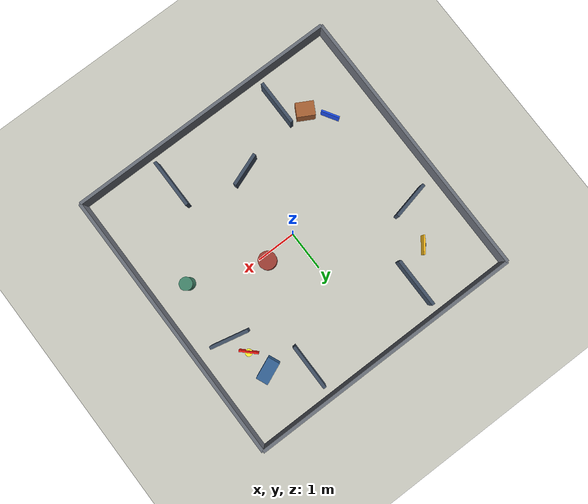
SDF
<?xml version="1.0"?>
<sdf version="1.9">
  <world name="tracked_robot_world">
    <physics name="default_physics" type="ignored">
      <max_step_size>0.001</max_step_size>
      <real_time_factor>1.0</real_time_factor>
      <real_time_update_rate>1000</real_time_update_rate>
    </physics>

    <plugin filename="gz-sim-physics-system" name="gz::sim::systems::Physics"/>
    <plugin filename="gz-sim-user-commands-system" name="gz::sim::systems::UserCommands"/>
    <plugin filename="gz-sim-scene-broadcaster-system" name="gz::sim::systems::SceneBroadcaster"/>
    <plugin filename="gz-sim-sensors-system" name="gz::sim::systems::Sensors">
      <render_engine>ogre2</render_engine>
    </plugin>

    <light name="sun" type="directional">
      <cast_shadows>true</cast_shadows>
      <pose>0 0 10 0 0 0</pose>
      <diffuse>0.82 0.82 0.80 1</diffuse>
      <specular>0.18 0.18 0.18 1</specular>
      <direction>-0.45 0.20 -0.88</direction>
    </light>

    <model name="ground_plane">
      <static>true</static>
      <link name="link">
        <collision name="collision">
          <geometry><plane><normal>0 0 1</normal><size>14 14</size></plane></geometry>
        </collision>
        <visual name="visual">
          <geometry><plane><normal>0 0 1</normal><size>14 14</size></plane></geometry>
          <material><diffuse>0.80 0.80 0.76 1</diffuse></material>
        </visual>
      </link>
    </model>

    <!-- Outer boundary: 7 m x 7 m. -->
    <model name="outer_north"><static>true</static><pose>0 3.5 0.25 0 0 0</pose><link name="link"><collision name="collision"><geometry><box><size>7.0 0.08 0.5</size></box></geometry></collision><visual name="visual"><geometry><box><size>7.0 0.08 0.5</size></box></geometry><material><diffuse>0.42 0.44 0.48 1</diffuse></material></visual></link></model>
    <model name="outer_south"><static>true</static><pose>0 -3.5 0.25 0 0 0</pose><link name="link"><collision name="collision"><geometry><box><size>7.0 0.08 0.5</size></box></geometry></collision><visual name="visual"><geometry><box><size>7.0 0.08 0.5</size></box></geometry><material><diffuse>0.42 0.44 0.48 1</diffuse></material></visual></link></model>
    <model name="outer_east"><static>true</static><pose>3.5 0 0.25 0 0 0</pose><link name="link"><collision name="collision"><geometry><box><size>0.08 7.0 0.5</size></box></geometry></collision><visual name="visual"><geometry><box><size>0.08 7.0 0.5</size></box></geometry><material><diffuse>0.42 0.44 0.48 1</diffuse></material></visual></link></model>
    <model name="outer_west"><static>true</static><pose>-3.5 0 0.25 0 0 0</pose><link name="link"><collision name="collision"><geometry><box><size>0.08 7.0 0.5</size></box></geometry></collision><visual name="visual"><geometry><box><size>0.08 7.0 0.5</size></box></geometry><material><diffuse>0.42 0.44 0.48 1</diffuse></material></visual></link></model>

    <!-- Open room dividers: short half-walls leave continuous reachable space for RRT/Nav2. -->
    <model name="divider_left_north"><static>true</static><pose>-1.55 2.62 0.25 0 0 0</pose><link name="link"><collision name="collision"><geometry><box><size>0.08 1.25 0.5</size></box></geometry></collision><visual name="visual"><geometry><box><size>0.08 1.25 0.5</size></box></geometry><material><diffuse>0.25 0.31 0.39 1</diffuse></material></visual></link></model>
    <model name="divider_left_south"><static>true</static><pose>-1.55 -2.65 0.25 0 0 0</pose><link name="link"><collision name="collision"><geometry><box><size>0.08 1.15 0.5</size></box></geometry></collision><visual name="visual"><geometry><box><size>0.08 1.15 0.5</size></box></geometry><material><diffuse>0.25 0.31 0.39 1</diffuse></material></visual></link></model>
    <model name="divider_right_north"><static>true</static><pose>1.55 2.65 0.25 0 0 0</pose><link name="link"><collision name="collision"><geometry><box><size>0.08 1.15 0.5</size></box></geometry></collision><visual name="visual"><geometry><box><size>0.08 1.15 0.5</size></box></geometry><material><diffuse>0.25 0.31 0.39 1</diffuse></material></visual></link></model>
    <model name="divider_right_south"><static>true</static><pose>1.55 -2.62 0.25 0 0 0</pose><link name="link"><collision name="collision"><geometry><box><size>0.08 1.25 0.5</size></box></geometry></collision><visual name="visual"><geometry><box><size>0.08 1.25 0.5</size></box></geometry><material><diffuse>0.25 0.31 0.39 1</diffuse></material></visual></link></model>
    <model name="north_left_partition"><static>true</static><pose>-2.62 1.05 0.25 0 0 0.22</pose><link name="link"><collision name="collision"><geometry><box><size>0.95 0.08 0.5</size></box></geometry></collision><visual name="visual"><geometry><box><size>0.95 0.08 0.5</size></box></geometry><material><diffuse>0.25 0.31 0.39 1</diffuse></material></visual></link></model>
    <model name="north_right_partition"><static>true</static><pose>2.62 1.05 0.25 0 0 -0.22</pose><link name="link"><collision name="collision"><geometry><box><size>0.95 0.08 0.5</size></box></geometry></collision><visual name="visual"><geometry><box><size>0.95 0.08 0.5</size></box></geometry><material><diffuse>0.25 0.31 0.39 1</diffuse></material></visual></link></model>
    <model name="south_mid_partition"><static>true</static><pose>0 -1.85 0.25 0 0 0.35</pose><link name="link"><collision name="collision"><geometry><box><size>0.85 0.08 0.5</size></box></geometry></collision><visual name="visual"><geometry><box><size>0.85 0.08 0.5</size></box></geometry><material><diffuse>0.25 0.31 0.39 1</diffuse></material></visual></link></model>

    <!-- Island obstacles and asymmetric landmarks. -->
    <model name="center_pillar"><static>true</static><pose>0.85 0.15 0.25 0 0 0</pose><link name="link"><collision name="collision"><geometry><cylinder><radius>0.22</radius><length>0.5</length></cylinder></geometry></collision><visual name="visual"><geometry><cylinder><radius>0.22</radius><length>0.5</length></cylinder></geometry><material><diffuse>0.62 0.24 0.20 1</diffuse></material></visual></link></model>
    <model name="north_box"><static>true</static><pose>2.35 2.15 0.22 0 0 0.4</pose><link name="link"><collision name="collision"><geometry><box><size>0.55 0.30 0.44</size></box></geometry></collision><visual name="visual"><geometry><box><size>0.55 0.30 0.44</size></box></geometry><material><diffuse>0.20 0.38 0.58 1</diffuse></material></visual></link></model>
    <model name="south_box"><static>true</static><pose>-2.0 -2.15 0.20 0 0 -0.5</pose><link name="link"><collision name="collision"><geometry><box><size>0.45 0.35 0.40</size></box></geometry></collision><visual name="visual"><geometry><box><size>0.45 0.35 0.40</size></box></geometry><material><diffuse>0.66 0.38 0.20 1</diffuse></material></visual></link></model>
    <model name="east_cylinder"><static>true</static><pose>2.65 -0.55 0.25 0 0 0</pose><link name="link"><collision name="collision"><geometry><cylinder><radius>0.16</radius><length>0.5</length></cylinder></geometry></collision><visual name="visual"><geometry><cylinder><radius>0.16</radius><length>0.5</length></cylinder></geometry><material><diffuse>0.26 0.52 0.42 1</diffuse></material></visual></link></model>

    <!-- Camera-visible, non-colliding risk cards for the simulated D435/YOLO loop. -->
    <model name="risk_leakage_card"><static>true</static><pose>2.45 1.55 0.24 0 0 -2.35</pose><link name="link"><visual name="panel"><geometry><box><size>0.04 0.46 0.32</size></box></geometry><material><diffuse>0.95 0.10 0.08 1</diffuse><emissive>0.35 0.02 0.02 1</emissive></material></visual><visual name="badge"><pose>-0.025 0 0.02 0 0 0</pose><geometry><cylinder><radius>0.09</radius><length>0.012</length></cylinder></geometry><material><diffuse>1.0 0.95 0.20 1</diffuse><emissive>0.22 0.20 0.02 1</emissive></material></visual></link></model>
    <model name="risk_blockage_card"><static>true</static><pose>-2.40 -1.70 0.24 0 0 0.55</pose><link name="link"><visual name="panel"><geometry><box><size>0.04 0.46 0.32</size></box></geometry><material><diffuse>0.12 0.32 0.95 1</diffuse><emissive>0.02 0.06 0.24 1</emissive></material></visual><visual name="badge"><pose>-0.025 0 0.02 0 0 0</pose><geometry><box><size>0.018 0.16 0.16</size></box></geometry><material><diffuse>0.90 0.95 1.00 1</diffuse><emissive>0.15 0.18 0.22 1</emissive></material></visual></link></model>
    <model name="risk_crack_card"><static>true</static><pose>-2.25 2.05 0.24 0 0 -0.65</pose><link name="link"><visual name="panel"><geometry><box><size>0.04 0.46 0.32</size></box></geometry><material><diffuse>0.98 0.74 0.12 1</diffuse><emissive>0.24 0.16 0.02 1</emissive></material></visual><visual name="badge"><pose>-0.025 0 0.02 0 0 0</pose><geometry><box><size>0.018 0.08 0.24</size></box></geometry><material><diffuse>0.08 0.08 0.08 1</diffuse><emissive>0.02 0.02 0.02 1</emissive></material></visual></link></model>
  </world>
</sdf>
